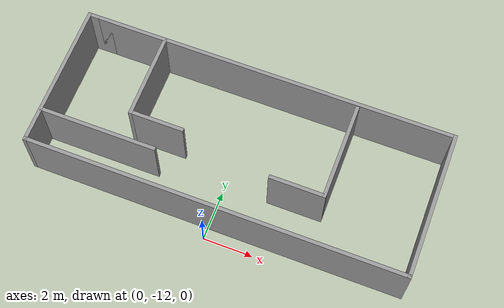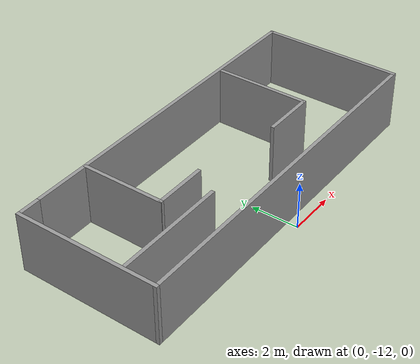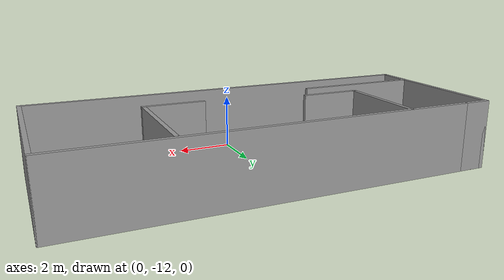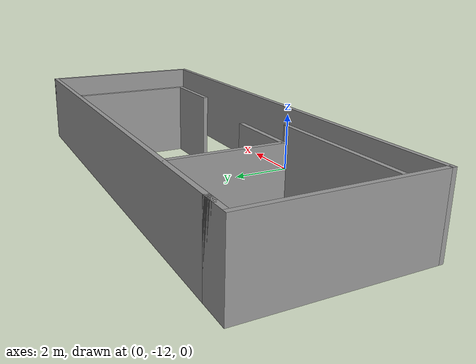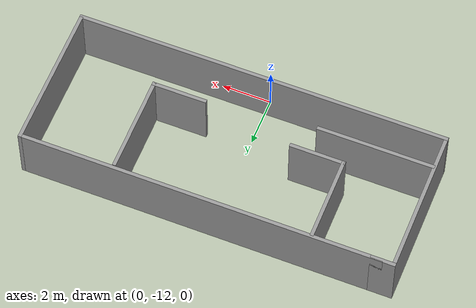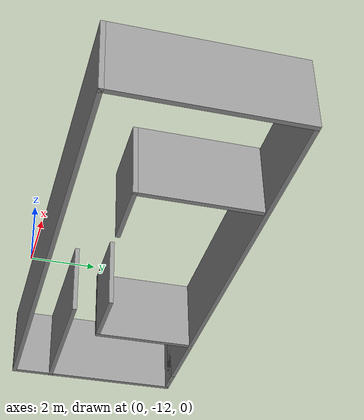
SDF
<?xml version='1.0'?>
<sdf version='1.7'>
  <model name='room'>
    <pose>0.2 -5.7775 0 0 -0 0</pose>
    <link name='Wall_22'>
      <collision name='Wall_22_Collision'>
        <geometry>
          <box>
            <size>14.75 0.15 2.5</size>
          </box>
        </geometry>
        <pose>0 0 1.25 0 -0 0</pose>
      </collision>
      <visual name='Wall_22_Visual'>
        <pose>0 0 1.25 0 -0 0</pose>
        <geometry>
          <box>
            <size>14.75 0.15 2.5</size>
          </box>
        </geometry>
        <material>
          <script>
            <uri>file://media/materials/scripts/gazebo.material</uri>
            <name>Gazebo/Grey</name>
          </script>
          <ambient>1 1 1 1</ambient>
        </material>
        <meta>
          <layer>0</layer>
        </meta>
      </visual>
      <pose>0.25 0.1475 0 0 -0 0</pose>
    </link>
    <link name='Wall_23'>
      <collision name='Wall_23_Collision'>
        <geometry>
          <box>
            <size>6 0.15 2.5</size>
          </box>
        </geometry>
        <pose>0 0 1.25 0 -0 0</pose>
      </collision>
      <visual name='Wall_23_Visual'>
        <pose>0 0 1.25 0 -0 0</pose>
        <geometry>
          <box>
            <size>6 0.15 2.5</size>
          </box>
        </geometry>
        <material>
          <script>
            <uri>file://media/materials/scripts/gazebo.material</uri>
            <name>Gazebo/Grey</name>
          </script>
          <ambient>1 1 1 1</ambient>
        </material>
        <meta>
          <layer>0</layer>
        </meta>
      </visual>
      <pose>7.55 -2.7775 0 0 -0 -1.5708</pose>
    </link>
    <link name='Wall_24'>
      <collision name='Wall_24_Collision'>
        <geometry>
          <box>
            <size>15.25 0.15 2.5</size>
          </box>
        </geometry>
        <pose>0 0 1.25 0 -0 0</pose>
      </collision>
      <visual name='Wall_24_Visual'>
        <pose>0 0 1.25 0 -0 0</pose>
        <geometry>
          <box>
            <size>15.25 0.15 2.5</size>
          </box>
        </geometry>
        <material>
          <script>
            <uri>file://media/materials/scripts/gazebo.material</uri>
            <name>Gazebo/Grey</name>
          </script>
          <ambient>1 1 1 1</ambient>
        </material>
        <meta>
          <layer>0</layer>
        </meta>
      </visual>
      <pose>-0 -5.7025 0 0 -0 3.14159</pose>
    </link>
    <link name='Wall_25'>
      <collision name='Wall_25_Collision'>
        <geometry>
          <box>
            <size>6 0.15 2.5</size>
          </box>
        </geometry>
        <pose>0 0 1.25 0 -0 0</pose>
      </collision>
      <visual name='Wall_25_Visual'>
        <pose>0 0 1.25 0 -0 0</pose>
        <geometry>
          <box>
            <size>6 0.15 2.5</size>
          </box>
        </geometry>
        <material>
          <script>
            <uri>file://media/materials/scripts/gazebo.material</uri>
            <name>Gazebo/Grey</name>
          </script>
          <ambient>1 1 1 1</ambient>
        </material>
        <meta>
          <layer>0</layer>
        </meta>
      </visual>
      <pose>-7.55 -2.7775 0 0 -0 1.5708</pose>
    </link>
    <link name='Wall_26'>
      <collision name='Wall_26_Collision'>
        <geometry>
          <box>
            <size>1 0.15 2.5</size>
          </box>
        </geometry>
        <pose>0 0 1.25 0 -0 0</pose>
      </collision>
      <visual name='Wall_26_Visual'>
        <pose>0 0 1.25 0 -0 0</pose>
        <geometry>
          <box>
            <size>1 0.15 2.5</size>
          </box>
        </geometry>
        <material>
          <script>
            <uri>file://media/materials/scripts/gazebo.material</uri>
            <name>Gazebo/Grey</name>
          </script>
          <ambient>1 1 1 1</ambient>
        </material>
        <meta>
          <layer>0</layer>
        </meta>
      </visual>
      <pose>-7.125 0.1475 0 0 -0 0</pose>
    </link>
    <link name='Wall_28'>
      <collision name='Wall_28_Collision'>
        <geometry>
          <box>
            <size>3.5 0.15 2.5</size>
          </box>
        </geometry>
        <pose>0 0 1.25 0 -0 0</pose>
      </collision>
      <visual name='Wall_28_Visual'>
        <pose>0 0 1.25 0 -0 0</pose>
        <geometry>
          <box>
            <size>3.5 0.15 2.5</size>
          </box>
        </geometry>
        <material>
          <script>
            <uri>file://media/materials/scripts/gazebo.material</uri>
            <name>Gazebo/Grey</name>
          </script>
          <ambient>1 1 1 1</ambient>
        </material>
        <meta>
          <layer>0</layer>
        </meta>
      </visual>
      <pose>-4.29 -1.5775 0 0 -0 -1.5708</pose>
    </link>
    <link name='Wall_29'>
      <collision name='Wall_29_Collision'>
        <geometry>
          <box>
            <size>2.25 0.15 2.5</size>
          </box>
        </geometry>
        <pose>0 0 1.25 0 -0 0</pose>
      </collision>
      <visual name='Wall_29_Visual'>
        <pose>0 0 1.25 0 -0 0</pose>
        <geometry>
          <box>
            <size>2.25 0.15 2.5</size>
          </box>
        </geometry>
        <material>
          <script>
            <uri>file://media/materials/scripts/gazebo.material</uri>
            <name>Gazebo/Grey</name>
          </script>
          <ambient>1 1 1 1</ambient>
        </material>
        <meta>
          <layer>0</layer>
        </meta>
      </visual>
      <pose>-3.24 -3.2525 0 0 -0 0</pose>
    </link>
    <link name='Wall_31'>
      <collision name='Wall_31_Collision'>
        <geometry>
          <box>
            <size>4 0.15 2.5</size>
          </box>
        </geometry>
        <pose>0 0 1.25 0 -0 0</pose>
      </collision>
      <visual name='Wall_31_Visual'>
        <pose>0 0 1.25 0 -0 0</pose>
        <geometry>
          <box>
            <size>4 0.15 2.5</size>
          </box>
        </geometry>
        <material>
          <script>
            <uri>file://media/materials/scripts/gazebo.material</uri>
            <name>Gazebo/Grey</name>
          </script>
          <ambient>1 1 1 1</ambient>
        </material>
        <meta>
          <layer>0</layer>
        </meta>
      </visual>
      <pose>3.72 -1.9475 0 0 -0 -1.5708</pose>
    </link>
    <link name='Wall_32'>
      <collision name='Wall_32_Collision'>
        <geometry>
          <box>
            <size>2.25 0.15 2.5</size>
          </box>
        </geometry>
        <pose>0 0 1.25 0 -0 0</pose>
      </collision>
      <visual name='Wall_32_Visual'>
        <pose>0 0 1.25 0 -0 0</pose>
        <geometry>
          <box>
            <size>2.25 0.15 2.5</size>
          </box>
        </geometry>
        <material>
          <script>
            <uri>file://media/materials/scripts/gazebo.material</uri>
            <name>Gazebo/Grey</name>
          </script>
          <ambient>1 1 1 1</ambient>
        </material>
        <meta>
          <layer>0</layer>
        </meta>
      </visual>
      <pose>2.67 -3.8725 0 0 -0 3.14159</pose>
    </link>
    <link name='Wall_34'>
      <collision name='Wall_34_Collision'>
        <geometry>
          <box>
            <size>4.75 0.15 2.5</size>
          </box>
        </geometry>
        <pose>0 0 1.25 0 -0 0</pose>
      </collision>
      <visual name='Wall_34_Visual'>
        <pose>0 0 1.25 0 -0 0</pose>
        <geometry>
          <box>
            <size>4.75 0.15 2.5</size>
          </box>
        </geometry>
        <material>
          <script>
            <uri>file://media/materials/scripts/gazebo.material</uri>
            <name>Gazebo/Grey</name>
          </script>
          <ambient>1 1 1 1</ambient>
        </material>
        <meta>
          <layer>0</layer>
        </meta>
      </visual>
      <pose>-5.18 -4.3525 0 0 -0 0</pose>
    </link>
    <static>1</static>
  </model>
</sdf>
